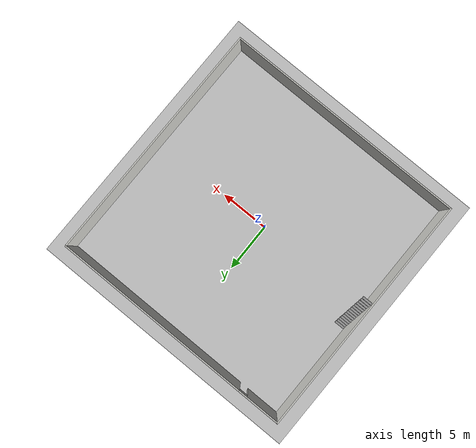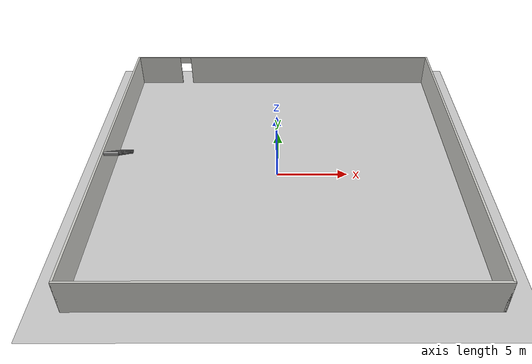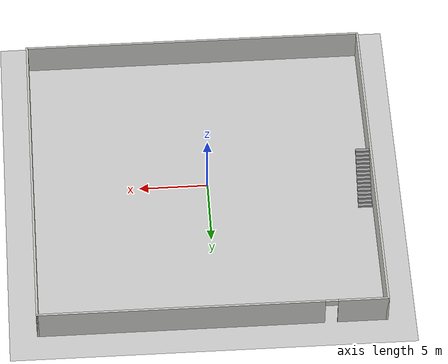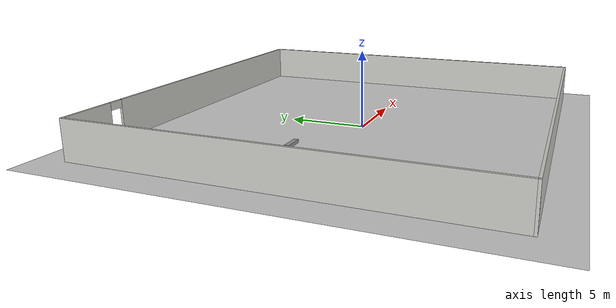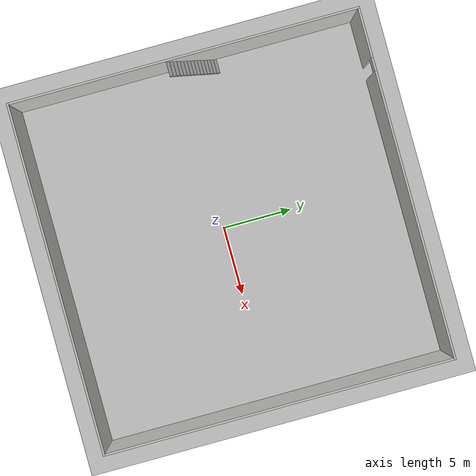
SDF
<sdf version="1.7">
 <world name="default">
  <light name="sun" type="directional">
   <pose>0 0 10 0 -0 0</pose>
   <diffuse>0.8 0.8 0.8 1</diffuse>
   <specular>0.2 0.2 0.2 1</specular>
   <attenuation>
    <range>1000</range>
    <constant>0.9</constant>
    <linear>0.01</linear>
    <quadratic>0.001</quadratic>
   </attenuation>
   <direction>-0.5 0.1 -0.9</direction>
   <spot><inner_angle>0</inner_angle><outer_angle>0</outer_angle><falloff>0</falloff></spot>
  </light>
  <model name="ground_plane">
   <static>1</static>
   <link name="link">
    <collision name="collision">
     <geometry><plane><normal>0 0 1</normal><size>100 100</size></plane></geometry>
     <surface>
      <contact><collide_bitmask>65535</collide_bitmask></contact>
      <friction><ode><mu>100</mu><mu2>50</mu2></ode></friction>
     </surface>
    </collision>
    <visual name="visual">
     <cast_shadows>0</cast_shadows>
     <geometry><plane><normal>0 0 1</normal><size>100 100</size></plane></geometry>
     <material>
      <script><uri>file://media/materials/scripts/gazebo.material</uri><name>Gazebo/Grey</name></script>
     </material>
    </visual>
   </link>
  </model>
  <gravity>0 0 -9.8</gravity>
  <magnetic_field>6e-06 2.3e-05 -4.2e-05</magnetic_field>
  <atmosphere type="adiabatic"/>
  <physics type="ode">
   <max_step_size>0.001</max_step_size>
   <real_time_factor>1</real_time_factor>
   <real_time_update_rate>1000</real_time_update_rate>
  </physics>
  <scene><ambient>0.4 0.4 0.4 1</ambient><background>0.7 0.7 0.7 1</background><shadows>1</shadows></scene>
  <audio><device>default</device></audio>
  <spherical_coordinates>
   <surface_model>EARTH_WGS84</surface_model>
   <latitude_deg>0</latitude_deg>
   <longitude_deg>0</longitude_deg>
   <elevation>0</elevation>
   <heading_deg>0</heading_deg>
  </spherical_coordinates>
  <model name="warehouse_world.world">
   <pose>0.391862 0.436345 0 0 -0 0</pose>
   <link name="Stairs_5">
    <visual name="Stairs_5_Visual_0">
     <pose>-11.7899 2.15415 0.083333 0 -0 0</pose>
     <geometry><box><size>1 0.233333 0.166667</size></box></geometry>
     <material>
      <script><uri>file://media/materials/scripts/gazebo.material</uri><name>Gazebo/Grey</name></script>
      <ambient>1 1 1 1</ambient>
     </material>
     <meta><layer>0</layer></meta>
    </visual>
    <collision name="Stairs_5_Collision_0">
     <geometry><box><size>1 0.233333 0.166667</size></box></geometry>
     <pose>-11.7899 2.15415 0.083333 0 -0 0</pose>
    </collision>
    <visual name="Stairs_5_Visual_1">
     <pose>-11.7899 1.92082 0.25 0 -0 0</pose>
     <geometry><box><size>1 0.233333 0.166667</size></box></geometry>
     <material>
      <script><uri>file://media/materials/scripts/gazebo.material</uri><name>Gazebo/Grey</name></script>
      <ambient>1 1 1 1</ambient>
     </material>
     <meta><layer>0</layer></meta>
    </visual>
    <collision name="Stairs_5_Collision_1">
     <geometry><box><size>1 0.233333 0.166667</size></box></geometry>
     <pose>-11.7899 1.92082 0.25 0 -0 0</pose>
    </collision>
    <visual name="Stairs_5_Visual_2">
     <pose>-11.7899 1.68748 0.416667 0 -0 0</pose>
     <geometry><box><size>1 0.233333 0.166667</size></box></geometry>
     <material>
      <script><uri>file://media/materials/scripts/gazebo.material</uri><name>Gazebo/Grey</name></script>
      <ambient>1 1 1 1</ambient>
     </material>
     <meta><layer>0</layer></meta>
    </visual>
    <collision name="Stairs_5_Collision_2">
     <geometry><box><size>1 0.233333 0.166667</size></box></geometry>
     <pose>-11.7899 1.68748 0.416667 0 -0 0</pose>
    </collision>
    <visual name="Stairs_5_Visual_3">
     <pose>-11.7899 1.45415 0.583333 0 -0 0</pose>
     <geometry><box><size>1 0.233333 0.166667</size></box></geometry>
     <material>
      <script><uri>file://media/materials/scripts/gazebo.material</uri><name>Gazebo/Grey</name></script>
      <ambient>1 1 1 1</ambient>
     </material>
     <meta><layer>0</layer></meta>
    </visual>
    <collision name="Stairs_5_Collision_3">
     <geometry><box><size>1 0.233333 0.166667</size></box></geometry>
     <pose>-11.7899 1.45415 0.583333 0 -0 0</pose>
    </collision>
    <visual name="Stairs_5_Visual_4">
     <pose>-11.7899 1.22082 0.75 0 -0 0</pose>
     <geometry><box><size>1 0.233333 0.166667</size></box></geometry>
     <material>
      <script><uri>file://media/materials/scripts/gazebo.material</uri><name>Gazebo/Grey</name></script>
      <ambient>1 1 1 1</ambient>
     </material>
     <meta><layer>0</layer></meta>
    </visual>
    <collision name="Stairs_5_Collision_4">
     <geometry><box><size>1 0.233333 0.166667</size></box></geometry>
     <pose>-11.7899 1.22082 0.75 0 -0 0</pose>
    </collision>
    <visual name="Stairs_5_Visual_5">
     <pose>-11.7899 0.987484 0.916667 0 -0 0</pose>
     <geometry><box><size>1 0.233333 0.166667</size></box></geometry>
     <material>
      <script><uri>file://media/materials/scripts/gazebo.material</uri><name>Gazebo/Grey</name></script>
      <ambient>1 1 1 1</ambient>
     </material>
     <meta><layer>0</layer></meta>
    </visual>
    <collision name="Stairs_5_Collision_5">
     <geometry><box><size>1 0.233333 0.166667</size></box></geometry>
     <pose>-11.7899 0.987484 0.916667 0 -0 0</pose>
    </collision>
    <visual name="Stairs_5_Visual_6">
     <pose>-11.7899 0.754151 1.08333 0 -0 0</pose>
     <geometry><box><size>1 0.233333 0.166667</size></box></geometry>
     <material>
      <script><uri>file://media/materials/scripts/gazebo.material</uri><name>Gazebo/Grey</name></script>
      <ambient>1 1 1 1</ambient>
     </material>
     <meta><layer>0</layer></meta>
    </visual>
    <collision name="Stairs_5_Collision_6">
     <geometry><box><size>1 0.233333 0.166667</size></box></geometry>
     <pose>-11.7899 0.754151 1.08333 0 -0 0</pose>
    </collision>
    <visual name="Stairs_5_Visual_7">
     <pose>-11.7899 0.520818 1.25 0 -0 0</pose>
     <geometry><box><size>1 0.233333 0.166667</size></box></geometry>
     <material>
      <script><uri>file://media/materials/scripts/gazebo.material</uri><name>Gazebo/Grey</name></script>
      <ambient>1 1 1 1</ambient>
     </material>
     <meta><layer>0</layer></meta>
    </visual>
    <collision name="Stairs_5_Collision_7">
     <geometry><box><size>1 0.233333 0.166667</size></box></geometry>
     <pose>-11.7899 0.520818 1.25 0 -0 0</pose>
    </collision>
    <visual name="Stairs_5_Visual_8">
     <pose>-11.7899 0.287484 1.41667 0 -0 0</pose>
     <geometry><box><size>1 0.233333 0.166667</size></box></geometry>
     <material>
      <script><uri>file://media/materials/scripts/gazebo.material</uri><name>Gazebo/Grey</name></script>
      <ambient>1 1 1 1</ambient>
     </material>
     <meta><layer>0</layer></meta>
    </visual>
    <collision name="Stairs_5_Collision_8">
     <geometry><box><size>1 0.233333 0.166667</size></box></geometry>
     <pose>-11.7899 0.287484 1.41667 0 -0 0</pose>
    </collision>
    <visual name="Stairs_5_Visual_9">
     <pose>-11.7899 0.054151 1.58333 0 -0 0</pose>
     <geometry><box><size>1 0.233333 0.166667</size></box></geometry>
     <material>
      <script><uri>file://media/materials/scripts/gazebo.material</uri><name>Gazebo/Grey</name></script>
      <ambient>1 1 1 1</ambient>
     </material>
     <meta><layer>0</layer></meta>
    </visual>
    <collision name="Stairs_5_Collision_9">
     <geometry><box><size>1 0.233333 0.166667</size></box></geometry>
     <pose>-11.7899 0.054151 1.58333 0 -0 0</pose>
    </collision>
    <visual name="Stairs_5_Visual_10">
     <pose>-11.7899 -0.179182 1.75 0 -0 0</pose>
     <geometry><box><size>1 0.233333 0.166667</size></box></geometry>
     <material>
      <script><uri>file://media/materials/scripts/gazebo.material</uri><name>Gazebo/Grey</name></script>
      <ambient>1 1 1 1</ambient>
     </material>
     <meta><layer>0</layer></meta>
    </visual>
    <collision name="Stairs_5_Collision_10">
     <geometry><box><size>1 0.233333 0.166667</size></box></geometry>
     <pose>-11.7899 -0.179182 1.75 0 -0 0</pose>
    </collision>
    <visual name="Stairs_5_Visual_11">
     <pose>-11.7899 -0.412516 1.91667 0 -0 0</pose>
     <geometry><box><size>1 0.233333 0.166667</size></box></geometry>
     <material>
      <script><uri>file://media/materials/scripts/gazebo.material</uri><name>Gazebo/Grey</name></script>
      <ambient>1 1 1 1</ambient>
     </material>
     <meta><layer>0</layer></meta>
    </visual>
    <collision name="Stairs_5_Collision_11">
     <geometry><box><size>1 0.233333 0.166667</size></box></geometry>
     <pose>-11.7899 -0.412516 1.91667 0 -0 0</pose>
    </collision>
    <visual name="Stairs_5_Visual_12">
     <pose>-11.7899 -0.645849 2.08333 0 -0 0</pose>
     <geometry><box><size>1 0.233333 0.166667</size></box></geometry>
     <material>
      <script><uri>file://media/materials/scripts/gazebo.material</uri><name>Gazebo/Grey</name></script>
      <ambient>1 1 1 1</ambient>
     </material>
     <meta><layer>0</layer></meta>
    </visual>
    <collision name="Stairs_5_Collision_12">
     <geometry><box><size>1 0.233333 0.166667</size></box></geometry>
     <pose>-11.7899 -0.645849 2.08333 0 -0 0</pose>
    </collision>
    <visual name="Stairs_5_Visual_13">
     <pose>-11.7899 -0.879182 2.25 0 -0 0</pose>
     <geometry><box><size>1 0.233333 0.166667</size></box></geometry>
     <material>
      <script><uri>file://media/materials/scripts/gazebo.material</uri><name>Gazebo/Grey</name></script>
      <ambient>1 1 1 1</ambient>
     </material>
     <meta><layer>0</layer></meta>
    </visual>
    <collision name="Stairs_5_Collision_13">
     <geometry><box><size>1 0.233333 0.166667</size></box></geometry>
     <pose>-11.7899 -0.879182 2.25 0 -0 0</pose>
    </collision>
    <visual name="Stairs_5_Visual_14">
     <pose>-11.7899 -1.11251 2.41667 0 -0 0</pose>
     <geometry><box><size>1 0.233333 0.166667</size></box></geometry>
     <material>
      <script><uri>file://media/materials/scripts/gazebo.material</uri><name>Gazebo/Grey</name></script>
      <ambient>1 1 1 1</ambient>
     </material>
     <meta><layer>0</layer></meta>
    </visual>
    <collision name="Stairs_5_Collision_14">
     <geometry><box><size>1 0.233333 0.166667</size></box></geometry>
     <pose>-11.7899 -1.11251 2.41667 0 -0 0</pose>
    </collision>
   </link>
   <link name="Wall_0">
    <collision name="Wall_0_Collision">
     <geometry><box><size>25 0.15 2.5</size></box></geometry>
     <pose>0 0 1.25 0 -0 0</pose>
    </collision>
    <visual name="Wall_0_Visual">
     <pose>0 0 1.25 0 -0 0</pose>
     <geometry><box><size>25 0.15 2.5</size></box></geometry>
     <material>
      <script><uri>file://media/materials/scripts/gazebo.material</uri><name>Gazebo/CeilingTiled</name></script>
      <ambient>0.368627 0.360784 0.392157 1</ambient>
     </material>
     <meta><layer>0</layer></meta>
    </visual>
    <pose>1e-06 -12.425 0 0 -0 0</pose>
   </link>
   <link name="Wall_3">
    <collision name="Wall_3_Collision">
     <geometry><box><size>25 0.15 2.5</size></box></geometry>
     <pose>0 0 1.25 0 -0 0</pose>
    </collision>
    <visual name="Wall_3_Visual">
     <pose>0 0 1.25 0 -0 0</pose>
     <geometry><box><size>25 0.15 2.5</size></box></geometry>
     <material>
      <script><uri>file://media/materials/scripts/gazebo.material</uri><name>Gazebo/CeilingTiled</name></script>
      <ambient>0.368627 0.360784 0.392157 1</ambient>
     </material>
     <meta><layer>0</layer></meta>
    </visual>
    <pose>-12.425 0 0 0 -0 1.5708</pose>
   </link>
   <link name="Wall_5">
    <pose>1e-06 12.425 0 0 -0 0</pose>
    <visual name="Wall_5_Visual_0">
     <pose>-10.6856 0 1.25 0 -0 0</pose>
     <geometry><box><size>3.62888 0.15 2.5</size></box></geometry>
     <material>
      <script><uri>file://media/materials/scripts/gazebo.material</uri><name>Gazebo/CeilingTiled</name></script>
      <ambient>0.368627 0.360784 0.392157 1</ambient>
     </material>
     <meta><layer>0</layer></meta>
    </visual>
    <collision name="Wall_5_Collision_0">
     <geometry><box><size>3.62888 0.15 2.5</size></box></geometry>
     <pose>-10.6856 0 1.25 0 -0 0</pose>
    </collision>
    <visual name="Wall_5_Visual_1">
     <pose>2.26444 0 1.25 0 -0 0</pose>
     <geometry><box><size>20.4711 0.15 2.5</size></box></geometry>
     <material>
      <script><uri>file://media/materials/scripts/gazebo.material</uri><name>Gazebo/CeilingTiled</name></script>
      <ambient>0.368627 0.360784 0.392157 1</ambient>
     </material>
     <meta><layer>0</layer></meta>
    </visual>
    <collision name="Wall_5_Collision_1">
     <geometry><box><size>20.4711 0.15 2.5</size></box></geometry>
     <pose>2.26444 0 1.25 0 -0 0</pose>
    </collision>
    <visual name="Wall_5_Visual_2">
     <pose>-8.42112 0 2.25 0 -0 0</pose>
     <geometry><box><size>0.9 0.15 0.5</size></box></geometry>
     <material>
      <script><uri>file://media/materials/scripts/gazebo.material</uri><name>Gazebo/CeilingTiled</name></script>
      <ambient>0.368627 0.360784 0.392157 1</ambient>
     </material>
     <meta><layer>0</layer></meta>
    </visual>
    <collision name="Wall_5_Collision_2">
     <geometry><box><size>0.9 0.15 0.5</size></box></geometry>
     <pose>-8.42112 0 2.25 0 -0 0</pose>
    </collision>
   </link>
   <link name="Wall_7">
    <collision name="Wall_7_Collision">
     <geometry><box><size>25 0.15 2.5</size></box></geometry>
     <pose>0 0 1.25 0 -0 0</pose>
    </collision>
    <visual name="Wall_7_Visual">
     <pose>0 0 1.25 0 -0 0</pose>
     <geometry><box><size>25 0.15 2.5</size></box></geometry>
     <material>
      <script><uri>file://media/materials/scripts/gazebo.material</uri><name>Gazebo/CeilingTiled</name></script>
      <ambient>0.368627 0.360784 0.392157 1</ambient>
     </material>
     <meta><layer>0</layer></meta>
    </visual>
    <pose>12.425 0 0 0 -0 -1.5708</pose>
   </link>
   <static>1</static>
  </model>
 </world>
</sdf>
